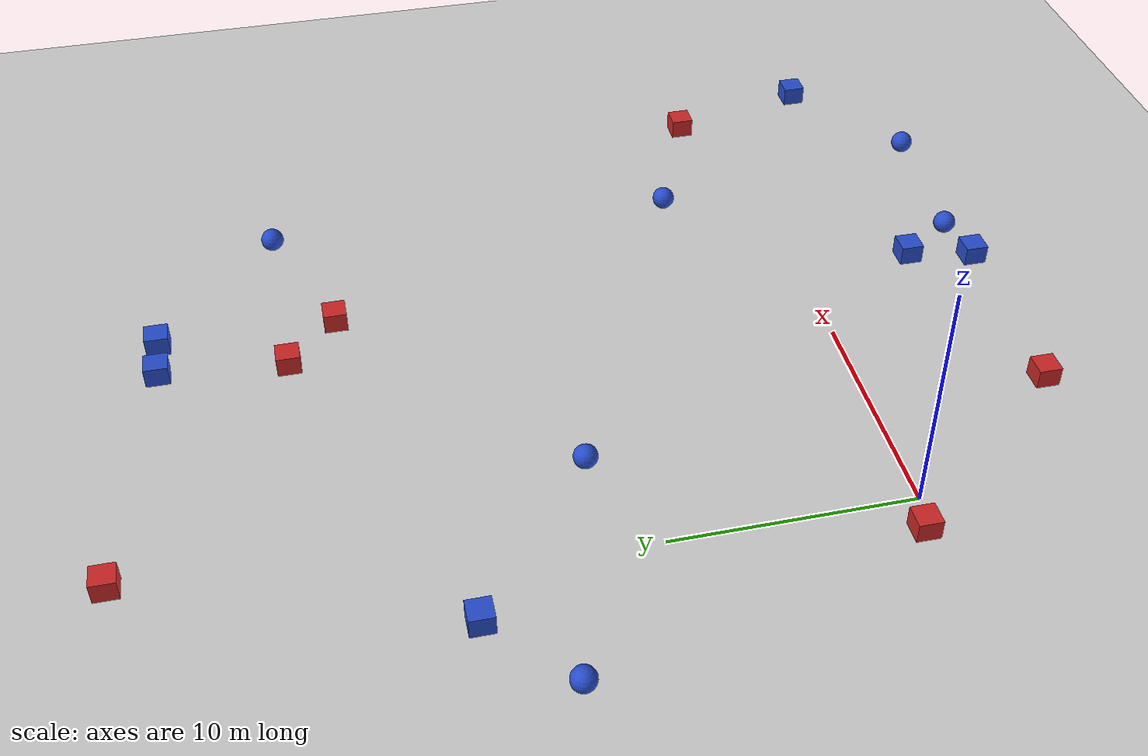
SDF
<sdf version="1.6">
 <world name="default">
  <light name="sun" type="directional">
   <pose>0 0 10 0 -0 0</pose>
   <diffuse>0.8 0.8 0.8 1</diffuse>
   <specular>0.1 0.1 0.1 1</specular>
   <attenuation>
    <range>1000</range>
    <constant>0.9</constant>
    <linear>0.01</linear>
    <quadratic>0.001</quadratic>
   </attenuation>
   <direction>-0.5 0.5 -1</direction>
  </light>
  <model name="ground_plane">
   <static>1</static>
   <link name="link">
    <collision name="collision">
     <geometry><plane><normal>0 0 1</normal><size>100 100</size></plane></geometry>
     <surface><friction><ode><mu>100</mu><mu2>50</mu2></ode></friction></surface>
    </collision>
    <visual name="visual">
     <cast_shadows>0</cast_shadows>
     <geometry><plane><normal>0 0 1</normal><size>100 100</size></plane></geometry>
     <material>
      <script><uri>file://media/materials/scripts/gazebo.material</uri><name>Gazebo/Grey</name></script>
     </material>
    </visual>
   </link>
  </model>
  <model name="unit_box_red_6">
   <pose>-1.51004714125 0.417421790214 0.329741 0 -0 0</pose>
   <link name="link">
    <inertial>
     <mass>1</mass>
     <inertia>
      <ixx>0.166667</ixx>
      <ixy>0</ixy>
      <ixz>0</ixz>
      <iyy>0.166667</iyy>
      <iyz>0</iyz>
      <izz>0.166667</izz>
     </inertia>
    </inertial>
    <collision name="collision"><geometry><box><size>1 1 0.999999</size></box></geometry></collision>
    <visual name="visual">
     <geometry><box><size>1 1 0.999999</size></box></geometry>
     <material>
      <script><name>Gazebo/Red</name><uri>file://media/materials/scripts/gazebo.material</uri></script>
     </material>
    </visual>
   </link>
  </model>
  <model name="unit_box_red_5">
   <pose>5.36221218071 -7.58926407735 0.329741 0 -0 0</pose>
   <link name="link">
    <inertial>
     <mass>1</mass>
     <inertia>
      <ixx>0.166667</ixx>
      <ixy>0</ixy>
      <ixz>0</ixz>
      <iyy>0.166667</iyy>
      <iyz>0</iyz>
      <izz>0.166667</izz>
     </inertia>
    </inertial>
    <collision name="collision"><geometry><box><size>1 1 0.999999</size></box></geometry></collision>
    <visual name="visual">
     <geometry><box><size>1 1 0.999999</size></box></geometry>
     <material>
      <script><name>Gazebo/Red</name><uri>file://media/materials/scripts/gazebo.material</uri></script>
     </material>
    </visual>
   </link>
  </model>
  <model name="unit_box_red_4">
   <pose>2.16569184765 30.2255651113 0.329741 0 -0 0</pose>
   <link name="link">
    <inertial>
     <mass>1</mass>
     <inertia>
      <ixx>0.166667</ixx>
      <ixy>0</ixy>
      <ixz>0</ixz>
      <iyy>0.166667</iyy>
      <iyz>0</iyz>
      <izz>0.166667</izz>
     </inertia>
    </inertial>
    <collision name="collision"><geometry><box><size>1 1 0.999999</size></box></geometry></collision>
    <visual name="visual">
     <geometry><box><size>1 1 0.999999</size></box></geometry>
     <material>
      <script><name>Gazebo/Red</name><uri>file://media/materials/scripts/gazebo.material</uri></script>
     </material>
    </visual>
   </link>
  </model>
  <model name="unit_box_red_3">
   <pose>12.8950373785 22.9843812384 0.329741 0 -0 0</pose>
   <link name="link">
    <inertial>
     <mass>1</mass>
     <inertia>
      <ixx>0.166667</ixx>
      <ixy>0</ixy>
      <ixz>0</ixz>
      <iyy>0.166667</iyy>
      <iyz>0</iyz>
      <izz>0.166667</izz>
     </inertia>
    </inertial>
    <collision name="collision"><geometry><box><size>1 1 0.999999</size></box></geometry></collision>
    <visual name="visual">
     <geometry><box><size>1 1 0.999999</size></box></geometry>
     <material>
      <script><name>Gazebo/Red</name><uri>file://media/materials/scripts/gazebo.material</uri></script>
     </material>
    </visual>
   </link>
  </model>
  <model name="unit_box_red_2">
   <pose>15.2583546293 20.8303968229 0.329741 0 -0 0</pose>
   <link name="link">
    <inertial>
     <mass>1</mass>
     <inertia>
      <ixx>0.166667</ixx>
      <ixy>0</ixy>
      <ixz>0</ixz>
      <iyy>0.166667</iyy>
      <iyz>0</iyz>
      <izz>0.166667</izz>
     </inertia>
    </inertial>
    <collision name="collision"><geometry><box><size>1 1 0.999999</size></box></geometry></collision>
    <visual name="visual">
     <geometry><box><size>1 1 0.999999</size></box></geometry>
     <material>
      <script><name>Gazebo/Red</name><uri>file://media/materials/scripts/gazebo.material</uri></script>
     </material>
    </visual>
   </link>
  </model>
  <model name="unit_box_red_1">
   <pose>26.7863057436 2.34462832204 0.329741 0 -0 0</pose>
   <link name="link">
    <inertial>
     <mass>1</mass>
     <inertia>
      <ixx>0.166667</ixx>
      <ixy>0</ixy>
      <ixz>0</ixz>
      <iyy>0.166667</iyy>
      <iyz>0</iyz>
      <izz>0.166667</izz>
     </inertia>
    </inertial>
    <collision name="collision"><geometry><box><size>1 1 0.999999</size></box></geometry></collision>
    <visual name="visual">
     <geometry><box><size>1 1 0.999999</size></box></geometry>
     <material>
      <script><name>Gazebo/Red</name><uri>file://media/materials/scripts/gazebo.material</uri></script>
     </material>
    </visual>
   </link>
  </model>
  <model name="unit_box_blue_6">
   <pose>13.7317256149 -7.951942025 0.329741 0 -0 0</pose>
   <link name="link">
    <inertial>
     <mass>1</mass>
     <inertia>
      <ixx>0.166667</ixx>
      <ixy>0</ixy>
      <ixz>0</ixz>
      <iyy>0.166667</iyy>
      <iyz>0</iyz>
      <izz>0.166667</izz>
     </inertia>
    </inertial>
    <collision name="collision"><geometry><box><size>1 1 0.999999</size></box></geometry></collision>
    <visual name="visual">
     <geometry><box><size>1 1 0.999999</size></box></geometry>
     <material>
      <script><name>Gazebo/Blue</name><uri>file://media/materials/scripts/gazebo.material</uri></script>
     </material>
    </visual>
   </link>
  </model>
  <model name="unit_box_blue_5">
   <pose>13.3991610811 28.3620615777 0.329741 0 -0 0</pose>
   <link name="link">
    <inertial>
     <mass>1</mass>
     <inertia>
      <ixx>0.166667</ixx>
      <ixy>0</ixy>
      <ixz>0</ixz>
      <iyy>0.166667</iyy>
      <iyz>0</iyz>
      <izz>0.166667</izz>
     </inertia>
    </inertial>
    <collision name="collision"><geometry><box><size>1 1 0.999999</size></box></geometry></collision>
    <visual name="visual">
     <geometry><box><size>1 1 0.999999</size></box></geometry>
     <material>
      <script><name>Gazebo/Blue</name><uri>file://media/materials/scripts/gazebo.material</uri></script>
     </material>
    </visual>
   </link>
  </model>
  <model name="unit_box_blue_4">
   <pose>14.413930422 -5.13203131525 0.329741 0 -0 0</pose>
   <link name="link">
    <inertial>
     <mass>1</mass>
     <inertia>
      <ixx>0.166667</ixx>
      <ixy>0</ixy>
      <ixz>0</ixz>
      <iyy>0.166667</iyy>
      <iyz>0</iyz>
      <izz>0.166667</izz>
     </inertia>
    </inertial>
    <collision name="collision"><geometry><box><size>1 1 0.999999</size></box></geometry></collision>
    <visual name="visual">
     <geometry><box><size>1 1 0.999999</size></box></geometry>
     <material>
      <script><name>Gazebo/Blue</name><uri>file://media/materials/scripts/gazebo.material</uri></script>
     </material>
    </visual>
   </link>
  </model>
  <model name="unit_box_blue_3">
   <pose>-2.28798453857 17.3201355918 0.329741 0 -0 0</pose>
   <link name="link">
    <inertial>
     <mass>1</mass>
     <inertia>
      <ixx>0.166667</ixx>
      <ixy>0</ixy>
      <ixz>0</ixz>
      <iyy>0.166667</iyy>
      <iyz>0</iyz>
      <izz>0.166667</izz>
     </inertia>
    </inertial>
    <collision name="collision"><geometry><box><size>1 1 0.999999</size></box></geometry></collision>
    <visual name="visual">
     <geometry><box><size>1 1 0.999999</size></box></geometry>
     <material>
      <script><name>Gazebo/Blue</name><uri>file://media/materials/scripts/gazebo.material</uri></script>
     </material>
    </visual>
   </link>
  </model>
  <model name="unit_box_blue_2">
   <pose>15.3093062674 28.3261002142 0.329741 0 -0 0</pose>
   <link name="link">
    <inertial>
     <mass>1</mass>
     <inertia>
      <ixx>0.166667</ixx>
      <ixy>0</ixy>
      <ixz>0</ixz>
      <iyy>0.166667</iyy>
      <iyz>0</iyz>
      <izz>0.166667</izz>
     </inertia>
    </inertial>
    <collision name="collision"><geometry><box><size>1 1 0.999999</size></box></geometry></collision>
    <visual name="visual">
     <geometry><box><size>1 1 0.999999</size></box></geometry>
     <material>
      <script><name>Gazebo/Blue</name><uri>file://media/materials/scripts/gazebo.material</uri></script>
     </material>
    </visual>
   </link>
  </model>
  <model name="unit_box_blue_1">
   <pose>28.5062075141 -4.12867472487 0.329741 0 -0 0</pose>
   <link name="link">
    <inertial>
     <mass>1</mass>
     <inertia>
      <ixx>0.166667</ixx>
      <ixy>0</ixy>
      <ixz>0</ixz>
      <iyy>0.166667</iyy>
      <iyz>0</iyz>
      <izz>0.166667</izz>
     </inertia>
    </inertial>
    <collision name="collision"><geometry><box><size>1 1 0.999999</size></box></geometry></collision>
    <visual name="visual">
     <geometry><box><size>1 1 0.999999</size></box></geometry>
     <material>
      <script><name>Gazebo/Blue</name><uri>file://media/materials/scripts/gazebo.material</uri></script>
     </material>
    </visual>
   </link>
  </model>
  <model name="unit_sphere_blue_6">
   <pose>4.52029053708 12.0701005426 0.5 0 -0 0</pose>
   <link name="link">
    <inertial>
     <mass>1</mass>
     <inertia><ixx>0.1</ixx><ixy>0</ixy><ixz>0</ixz><iyy>0.1</iyy><iyz>0</iyz><izz>0.1</izz></inertia>
    </inertial>
    <collision name="collision"><geometry><sphere><radius>0.5</radius></sphere></geometry></collision>
    <visual name="visual">
     <geometry><sphere><radius>0.5</radius></sphere></geometry>
     <material>
      <script><name>Gazebo/Blue</name><uri>file://media/materials/scripts/gazebo.material</uri></script>
     </material>
    </visual>
   </link>
  </model>
  <model name="unit_sphere_blue_5">
   <pose>21.2536399774 23.1299629457 0.5 0 -0 0</pose>
   <link name="link">
    <inertial>
     <mass>1</mass>
     <inertia><ixx>0.1</ixx><ixy>0</ixy><ixz>0</ixz><iyy>0.1</iyy><iyz>0</iyz><izz>0.1</izz></inertia>
    </inertial>
    <collision name="collision"><geometry><sphere><radius>0.5</radius></sphere></geometry></collision>
    <visual name="visual">
     <geometry><sphere><radius>0.5</radius></sphere></geometry>
     <material>
      <script><name>Gazebo/Blue</name><uri>file://media/materials/scripts/gazebo.material</uri></script>
     </material>
    </visual>
   </link>
  </model>
  <model name="unit_sphere_blue_4">
   <pose>22.625208731 -7.98458542879 0.5 0 -0 0</pose>
   <link name="link">
    <inertial>
     <mass>1</mass>
     <inertia><ixx>0.1</ixx><ixy>0</ixy><ixz>0</ixz><iyy>0.1</iyy><iyz>0</iyz><izz>0.1</izz></inertia>
    </inertial>
    <collision name="collision"><geometry><sphere><radius>0.5</radius></sphere></geometry></collision>
    <visual name="visual">
     <geometry><sphere><radius>0.5</radius></sphere></geometry>
     <material>
      <script><name>Gazebo/Blue</name><uri>file://media/materials/scripts/gazebo.material</uri></script>
     </material>
    </visual>
   </link>
  </model>
  <model name="unit_sphere_blue_3">
   <pose>-5.73787708633 14.3540737698 0.5 0 -0 0</pose>
   <link name="link">
    <inertial>
     <mass>1</mass>
     <inertia><ixx>0.1</ixx><ixy>0</ixy><ixz>0</ixz><iyy>0.1</iyy><iyz>0</iyz><izz>0.1</izz></inertia>
    </inertial>
    <collision name="collision"><geometry><sphere><radius>0.5</radius></sphere></geometry></collision>
    <visual name="visual">
     <geometry><sphere><radius>0.5</radius></sphere></geometry>
     <material>
      <script><name>Gazebo/Blue</name><uri>file://media/materials/scripts/gazebo.material</uri></script>
     </material>
    </visual>
   </link>
  </model>
  <model name="unit_sphere_blue_2">
   <pose>20.5539047568 4.8193477813 0.5 0 -0 0</pose>
   <link name="link">
    <inertial>
     <mass>1</mass>
     <inertia><ixx>0.1</ixx><ixy>0</ixy><ixz>0</ixz><iyy>0.1</iyy><iyz>0</iyz><izz>0.1</izz></inertia>
    </inertial>
    <collision name="collision"><geometry><sphere><radius>0.5</radius></sphere></geometry></collision>
    <visual name="visual">
     <geometry><sphere><radius>0.5</radius></sphere></geometry>
     <material>
      <script><name>Gazebo/Blue</name><uri>file://media/materials/scripts/gazebo.material</uri></script>
     </material>
    </visual>
   </link>
  </model>
  <model name="unit_sphere_blue_1">
   <pose>15.8651598473 -7.46871205521 0.5 0 -0 0</pose>
   <link name="link">
    <inertial>
     <mass>1</mass>
     <inertia><ixx>0.1</ixx><ixy>0</ixy><ixz>0</ixz><iyy>0.1</iyy><iyz>0</iyz><izz>0.1</izz></inertia>
    </inertial>
    <collision name="collision"><geometry><sphere><radius>0.5</radius></sphere></geometry></collision>
    <visual name="visual">
     <geometry><sphere><radius>0.5</radius></sphere></geometry>
     <material>
      <script><name>Gazebo/Blue</name><uri>file://media/materials/scripts/gazebo.material</uri></script>
     </material>
    </visual>
   </link>
  </model>
  <gravity>0 0 -9.8</gravity>
  <magnetic_field>6e-06 2.3e-05 -4.2e-05</magnetic_field>
  <atmosphere type="adiabatic"/>
  <physics default="0" name="default_physics" type="ode">
   <max_step_size>0.001</max_step_size>
   <real_time_factor>1</real_time_factor>
   <real_time_update_rate>1000</real_time_update_rate>
  </physics>
  <scene><ambient>0.4 0.4 0.4 1</ambient><background>0.7 0.7 0.7 1</background><shadows>1</shadows></scene>
  <spherical_coordinates>
   <surface_model>EARTH_WGS84</surface_model>
   <latitude_deg>0</latitude_deg>
   <longitude_deg>0</longitude_deg>
   <elevation>0</elevation>
   <heading_deg>0</heading_deg>
  </spherical_coordinates>
 </world>
</sdf>
